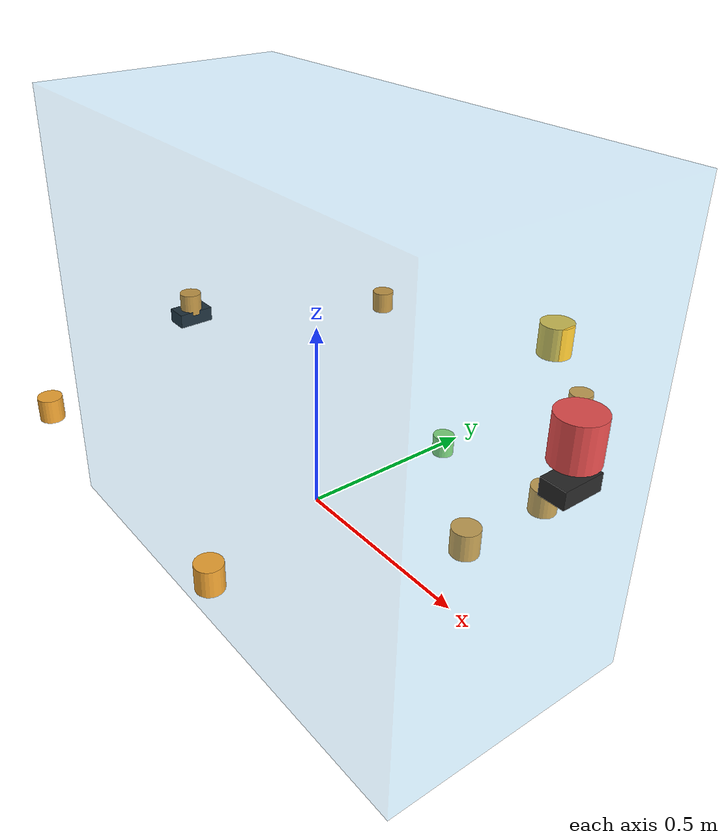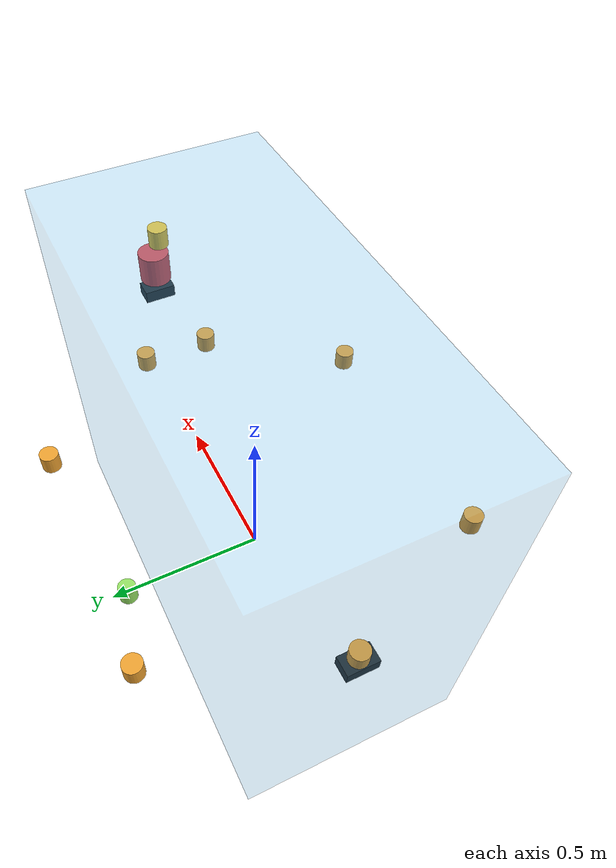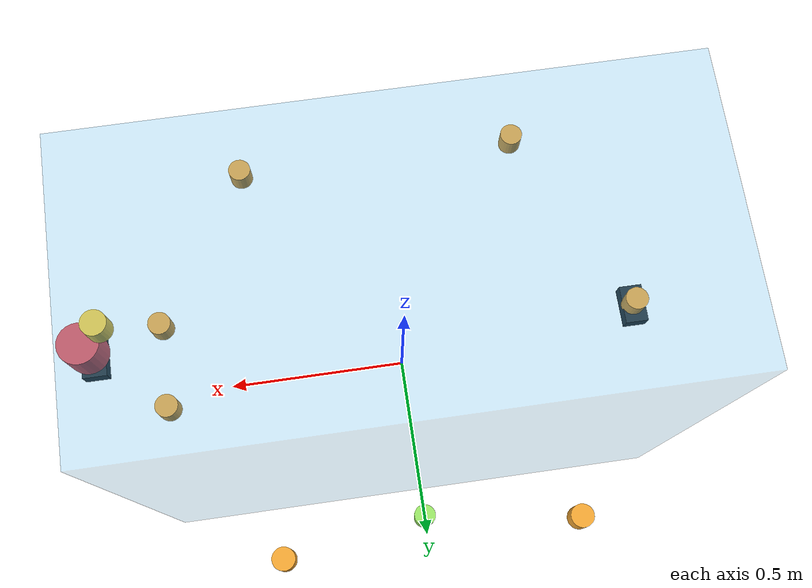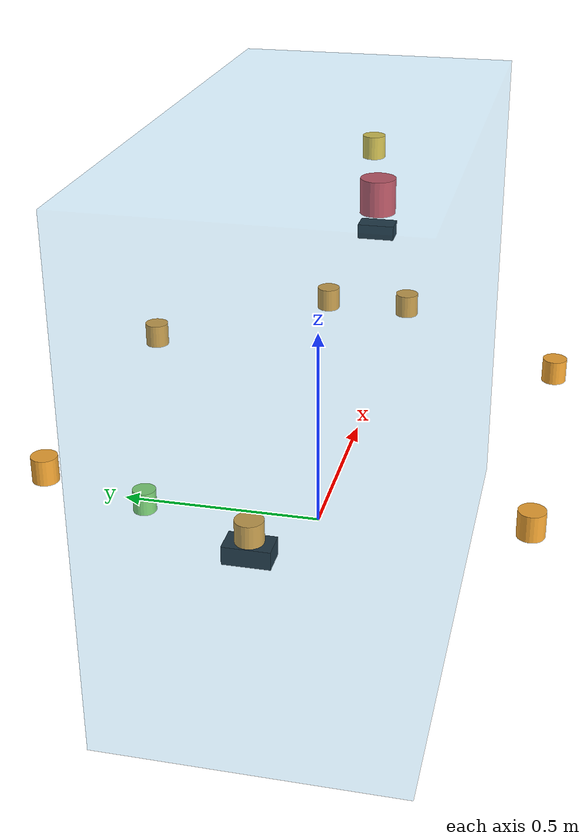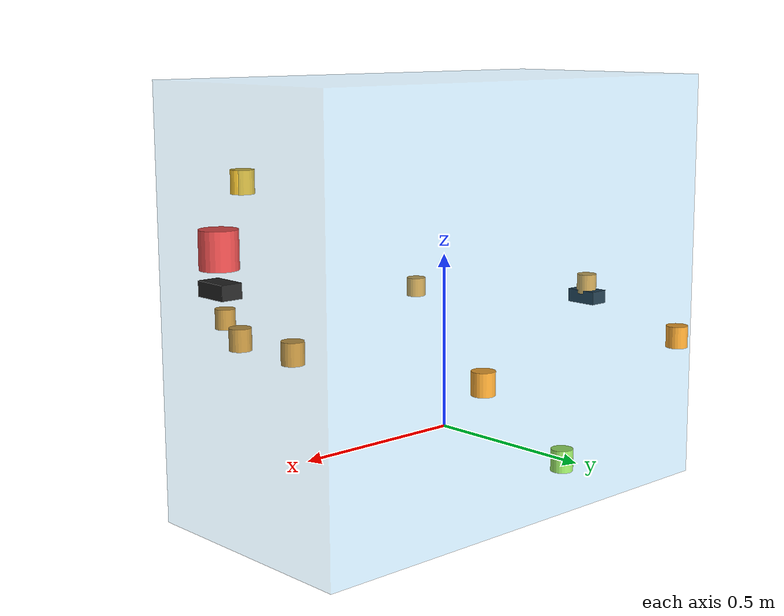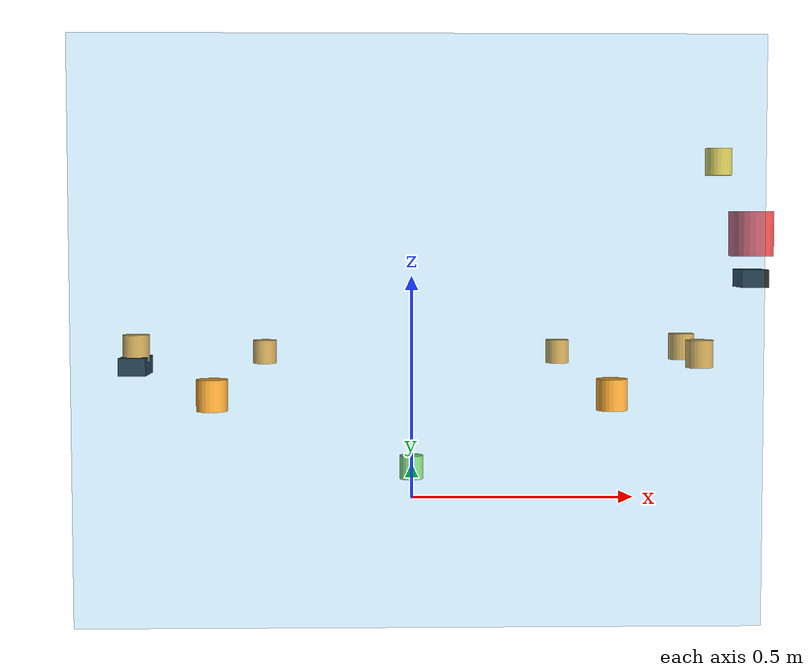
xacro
<?xml version="1.0"?>
<robot name="camrod_sensor_kit" xmlns:xacro="http://www.ros.org/wiki/xacro">

  <!-- 1. Base link / sensor kit base link arguments             -->
  <xacro:arg name="robot_center_link" default="robot_center_link"/>
  <xacro:arg name="robot_base_link" default="robot_base_link"/>
  <xacro:arg name="sensor_kit_base_link" default="sensor_kit_base_link"/>
  <xacro:arg name="rear_axle_offset_x" default="0.443"/>

  <!-- 2. Simple robot body size (for visualization only)        -->
  <xacro:arg name="base_length" default="1.4"/>
  <xacro:arg name="base_width"  default="0.7"/>
  <xacro:arg name="base_height" default="1.2"/>
  <!-- HH_260803 - Body center is 0.01257 m ahead of the axle midpoint. -->
  <xacro:arg name="base_origin_xyz" default="0.012570 0.000050 0.394565"/>

  <!-- 3. Existing sensor transform arguments                    -->
  <!--    xyz: meters                                            -->
  <!--    rpy: radians                                           -->
  <xacro:arg name="imu_xyz" default="0.688 0.0 0.756"/>
  <xacro:arg name="imu_rpy" default="0.0 0.0 0.0"/>

  <!-- HH_260805 - Missing YAML keeps the unverified GNSS solution at robot center. -->
  <!-- HH_260806 - Left GNSS antenna is 0.45 m along robot body +Y. -->
  <xacro:arg name="gnss_xyz" default="0.0 0.45 0.0"/>
  <xacro:arg name="gnss_rpy" default="0.0 0.0 0.0"/>

  <xacro:arg name="lidar_xyz" default="0.76336 0.0 0.59538"/>
  <xacro:arg name="lidar_rpy" default="0.0 0.0 0.0"/>

  <!-- HH_260528 - Dual econ camera arguments (front + rear).                    -->
  <!--   TF: sensor_kit_base_link → camera_front_link → camera_front (optical) -->
  <!--       sensor_kit_base_link → camera_rear_link  → camera_rear  (optical) -->
  <!-- HH_260803 - Fallbacks are robot_center_link-relative; mounts did not move. -->
  <!--   front: x=0.76337 m, z=0.49568 m, yaw=0 (forward-facing)              -->
  <!--   rear : x=-0.61933 m, z=0.30013 m, yaw=π (backward-facing)            -->
  <xacro:arg name="camera_front_xyz" default="0.76337 0.0 0.49568"/>
  <xacro:arg name="camera_front_rpy" default="0.0 0.0 0.0"/>

  <xacro:arg name="camera_rear_xyz"  default="-0.61933 0.0 0.30013"/>
  <xacro:arg name="camera_rear_rpy"  default="0.0 0.0 3.141593"/>

  <!-- 4. Radar transform arguments                              -->
  <!--    yaw examples:                                          -->
  <!--      front1/front2 = 0 deg = 0.0                           -->
  <!--      left1/left2   =  90 deg =  1.570796                  -->
  <!--      right1/right2 = -90 deg = -1.570796                  -->
  <!--      rear   = 180 deg =  3.141593                         -->
  <!-- HH_260623 - Removed the old single-front radar frame; only front1/front2 exist. -->
  <!-- HH_260803 - Fallback defaults are expressed from robot_center_link. -->
  <xacro:arg name="radar_front1_xyz" default="0.62787 -0.11005 0.33378"/>
  <xacro:arg name="radar_front1_rpy" default="0.0 0.0 0.0"/>

  <xacro:arg name="radar_front2_xyz" default="0.62787 0.11005 0.33378"/>
  <xacro:arg name="radar_front2_rpy" default="0.0 0.0 0.0"/>

  <!-- HH_260807 - Side radar XY values are measured from robot_center_link. -->
  <xacro:arg name="radar_left1_xyz"  default="0.38 0.53 0.29013"/>
  <xacro:arg name="radar_left1_rpy"  default="0.0 0.0 1.570796"/>

  <xacro:arg name="radar_left2_xyz"  default="-0.38 0.53 0.29013"/>
  <xacro:arg name="radar_left2_rpy"  default="0.0 0.0 1.570796"/>

  <xacro:arg name="radar_right1_xyz" default="0.38 -0.53 0.29013"/>
  <xacro:arg name="radar_right1_rpy" default="0.0 0.0 -1.570796"/>

  <xacro:arg name="radar_right2_xyz" default="-0.38 -0.53 0.29013"/>
  <xacro:arg name="radar_right2_rpy" default="0.0 0.0 -1.570796"/>

  <xacro:arg name="radar_rear_xyz"   default="-0.61733 0.0 0.33978"/>
  <xacro:arg name="radar_rear_rpy"   default="0.0 0.0 3.141593"/>

  <!-- 5. Local properties                                       -->
  <xacro:property name="center_link_name" value="$(arg robot_center_link)"/>
  <xacro:property name="rear_base_link_name" value="$(arg robot_base_link)"/>
  <xacro:property name="sensor_kit_base_link_name" value="$(arg sensor_kit_base_link)"/>
  <xacro:property name="rear_axle_offset_x_val" value="$(arg rear_axle_offset_x)"/>
  <xacro:property name="base_length_val" value="$(arg base_length)"/>
  <xacro:property name="base_width_val"  value="$(arg base_width)"/>
  <xacro:property name="base_height_val" value="$(arg base_height)"/>
  <xacro:property name="base_origin_xyz_val" value="$(arg base_origin_xyz)"/>

  <!-- 6. Reusable sensor macros                                 -->

  <!-- sensor_link: one body link + one fixed joint -->
  <xacro:macro name="sensor_link" params="name parent xyz rpy color_rgba radius length mass">
    <link name="${name}">
      <visual>
        <origin xyz="0 0 0" rpy="0 0 0"/>
        <geometry>
          <cylinder radius="${radius}" length="${length}"/>
        </geometry>
        <material name="${name}_mat">
          <color rgba="${color_rgba}"/>
        </material>
      </visual>

      <collision>
        <origin xyz="0 0 0" rpy="0 0 0"/>
        <geometry>
          <cylinder radius="${radius}" length="${length}"/>
        </geometry>
      </collision>

      <inertial>
        <mass value="${mass}"/>
        <origin xyz="0 0 0" rpy="0 0 0"/>
        <inertia ixx="1e-4" ixy="0.0" ixz="0.0"
                 iyy="1e-4" iyz="0.0"
                 izz="1e-4"/>
      </inertial>
    </link>

    <joint name="${name}_joint" type="fixed">
      <parent link="${parent}"/>
      <child link="${name}"/>
      <origin xyz="${xyz}" rpy="${rpy}"/>
    </joint>
  </xacro:macro>

  <!-- HH_260528 - econ_camera_link macro                                       -->
  <!--   Creates a body frame (name) and an optical child frame (optical_name).-->
  <!--   optical_name joint uses the standard ROS camera optical convention:  -->
  <!--     RPY = -π/2, 0, -π/2  (Z forward, Y down in optical frame)         -->
  <xacro:macro name="econ_camera_link" params="name optical_name parent xyz rpy">
    <link name="${name}">
      <visual>
        <origin xyz="0 0 0" rpy="0 0 0"/>
        <geometry>
          <box size="0.06 0.10 0.04"/>
        </geometry>
        <material name="${name}_mat">
          <color rgba="0.15 0.15 0.15 1.0"/>
        </material>
      </visual>
      <collision>
        <origin xyz="0 0 0" rpy="0 0 0"/>
        <geometry>
          <box size="0.06 0.10 0.04"/>
        </geometry>
      </collision>
      <inertial>
        <mass value="0.15"/>
        <origin xyz="0 0 0" rpy="0 0 0"/>
        <inertia ixx="1e-4" ixy="0.0" ixz="0.0"
                 iyy="1e-4" iyz="0.0"
                 izz="1e-4"/>
      </inertial>
    </link>

    <joint name="${name}_joint" type="fixed">
      <parent link="${parent}"/>
      <child link="${name}"/>
      <origin xyz="${xyz}" rpy="${rpy}"/>
    </joint>

    <!-- Optical frame: Z forward, Y down (standard ROS camera convention). -->
    <link name="${optical_name}"/>
    <joint name="${optical_name}_joint" type="fixed">
      <parent link="${name}"/>
      <child link="${optical_name}"/>
      <origin xyz="0 0 0" rpy="-1.570796 0.0 -1.570796"/>
    </joint>
  </xacro:macro>

  <!-- 7. Robot center and legacy rear-axle base links           -->
  <link name="${center_link_name}">
    <visual>
      <origin xyz="${base_origin_xyz_val}" rpy="0 0 0"/>
      <geometry>
        <box size="${base_length_val} ${base_width_val} ${base_height_val}"/>
      </geometry>
      <material name="body_color">
        <color rgba="0.10 0.60 0.90 0.20"/>
      </material>
    </visual>

    <collision>
      <origin xyz="${base_origin_xyz_val}" rpy="0 0 0"/>
      <geometry>
        <box size="${base_length_val} ${base_width_val} ${base_height_val}"/>
      </geometry>
    </collision>

    <inertial>
      <mass value="10.0"/>
      <origin xyz="${base_origin_xyz_val}" rpy="0 0 0"/>
      <inertia ixx="1.0" ixy="0.0" ixz="0.0"
               iyy="1.0" iyz="0.0"
               izz="1.0"/>
    </inertial>
  </link>

  <!-- HH_260803 - Keep robot_base_link as an explicit rear-axle compatibility frame. -->
  <link name="${rear_base_link_name}"/>
  <joint name="${center_link_name}_to_${rear_base_link_name}" type="fixed">
    <parent link="${center_link_name}"/>
    <child link="${rear_base_link_name}"/>
    <origin xyz="-${rear_axle_offset_x_val} 0 0" rpy="0 0 0"/>
  </joint>

  <!-- 8. Sensor kit base link                                   -->
  <link name="${sensor_kit_base_link_name}"/>

  <joint name="${center_link_name}_to_${sensor_kit_base_link_name}" type="fixed">
    <parent link="${center_link_name}"/>
    <child link="${sensor_kit_base_link_name}"/>
    <origin xyz="0 0 0" rpy="0 0 0"/>
  </joint>

  <!-- 9. Existing sensors                                       -->
  <xacro:sensor_link
    name="imu_link"
    parent="${sensor_kit_base_link_name}"
    xyz="$(arg imu_xyz)"
    rpy="$(arg imu_rpy)"
    color_rgba="1.0 0.8 0.2 1.0"
    radius="0.03"
    length="0.06"
    mass="0.10"/>

  <xacro:sensor_link
    name="gnss_link"
    parent="${sensor_kit_base_link_name}"
    xyz="$(arg gnss_xyz)"
    rpy="$(arg gnss_rpy)"
    color_rgba="0.6 0.9 0.4 1.0"
    radius="0.03"
    length="0.06"
    mass="0.10"/>

  <xacro:sensor_link
    name="lidar_link"
    parent="${sensor_kit_base_link_name}"
    xyz="$(arg lidar_xyz)"
    rpy="$(arg lidar_rpy)"
    color_rgba="0.9 0.3 0.3 1.0"
    radius="0.05"
    length="0.10"
    mass="0.30"/>

  <!-- HH_260623 - Removed old single camera_link; camera_front/camera_rear are canonical. -->

  <!-- 10. Radar sensors                                         -->
  <!-- HH_260507 - Radar sensors are attached directly under sensor_kit_base_link. -->
  <!-- HH_260623 - Front radar TFs match the 7-channel radar topics exactly. -->

  <xacro:sensor_link
    name="radar_front1_link"
    parent="${sensor_kit_base_link_name}"
    xyz="$(arg radar_front1_xyz)"
    rpy="$(arg radar_front1_rpy)"
    color_rgba="0.95 0.65 0.20 1.0"
    radius="0.03"
    length="0.06"
    mass="0.10"/>

  <xacro:sensor_link
    name="radar_front2_link"
    parent="${sensor_kit_base_link_name}"
    xyz="$(arg radar_front2_xyz)"
    rpy="$(arg radar_front2_rpy)"
    color_rgba="0.95 0.65 0.20 1.0"
    radius="0.03"
    length="0.06"
    mass="0.10"/>

  <xacro:sensor_link
    name="radar_left1_link"
    parent="${sensor_kit_base_link_name}"
    xyz="$(arg radar_left1_xyz)"
    rpy="$(arg radar_left1_rpy)"
    color_rgba="0.95 0.65 0.20 1.0"
    radius="0.03"
    length="0.06"
    mass="0.10"/>

  <xacro:sensor_link
    name="radar_left2_link"
    parent="${sensor_kit_base_link_name}"
    xyz="$(arg radar_left2_xyz)"
    rpy="$(arg radar_left2_rpy)"
    color_rgba="0.95 0.65 0.20 1.0"
    radius="0.03"
    length="0.06"
    mass="0.10"/>

  <xacro:sensor_link
    name="radar_right1_link"
    parent="${sensor_kit_base_link_name}"
    xyz="$(arg radar_right1_xyz)"
    rpy="$(arg radar_right1_rpy)"
    color_rgba="0.95 0.65 0.20 1.0"
    radius="0.03"
    length="0.06"
    mass="0.10"/>

  <xacro:sensor_link
    name="radar_right2_link"
    parent="${sensor_kit_base_link_name}"
    xyz="$(arg radar_right2_xyz)"
    rpy="$(arg radar_right2_rpy)"
    color_rgba="0.95 0.65 0.20 1.0"
    radius="0.03"
    length="0.06"
    mass="0.10"/>

  <xacro:sensor_link
    name="radar_rear_link"
    parent="${sensor_kit_base_link_name}"
    xyz="$(arg radar_rear_xyz)"
    rpy="$(arg radar_rear_rpy)"
    color_rgba="0.95 0.65 0.20 1.0"
    radius="0.03"
    length="0.06"
    mass="0.10"/>

  <!-- 11. Econ dual cameras (HH_260528)                         -->
  <!--     sensor_kit_base_link → camera_front_link → camera_front -->
  <!--     sensor_kit_base_link → camera_rear_link  → camera_rear  -->
  <xacro:econ_camera_link
    name="camera_front_link"
    optical_name="camera_front"
    parent="${sensor_kit_base_link_name}"
    xyz="$(arg camera_front_xyz)"
    rpy="$(arg camera_front_rpy)"/>

  <xacro:econ_camera_link
    name="camera_rear_link"
    optical_name="camera_rear"
    parent="${sensor_kit_base_link_name}"
    xyz="$(arg camera_rear_xyz)"
    rpy="$(arg camera_rear_rpy)"/>

</robot>
